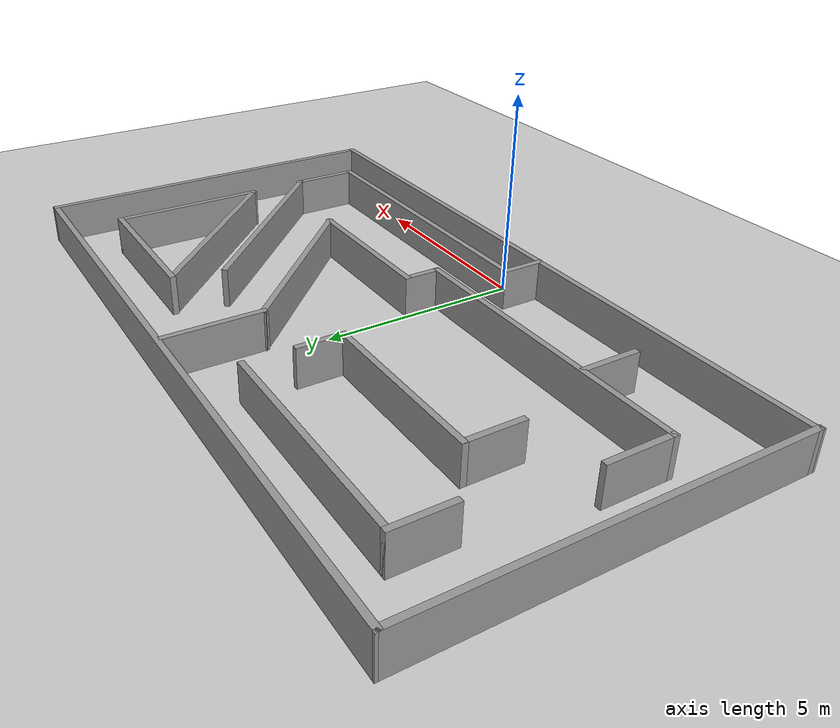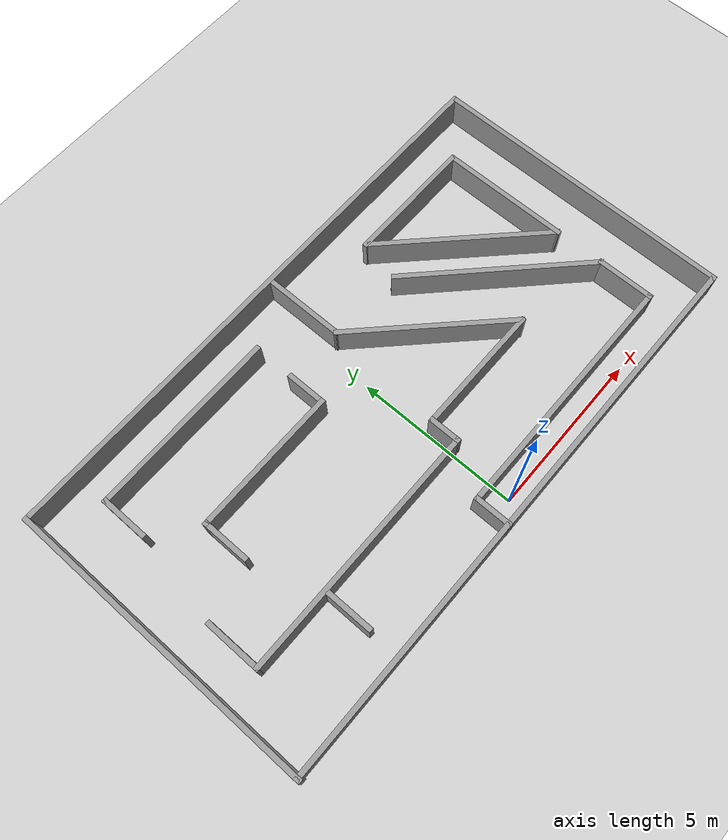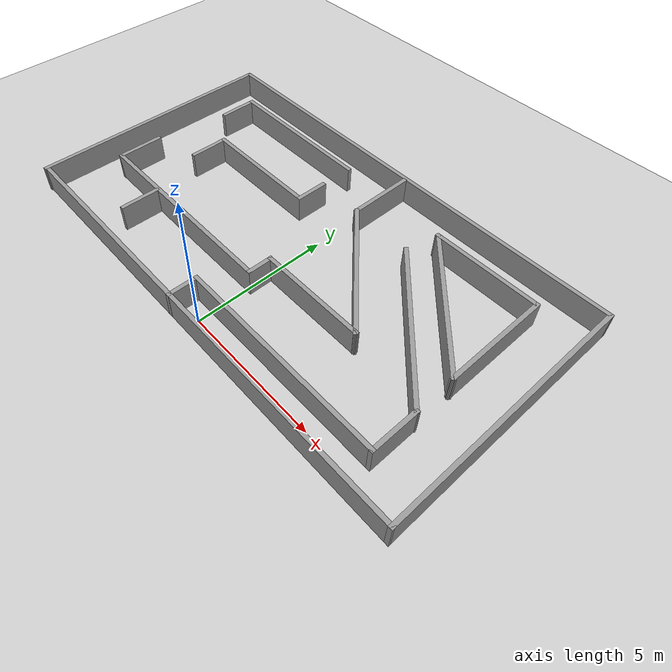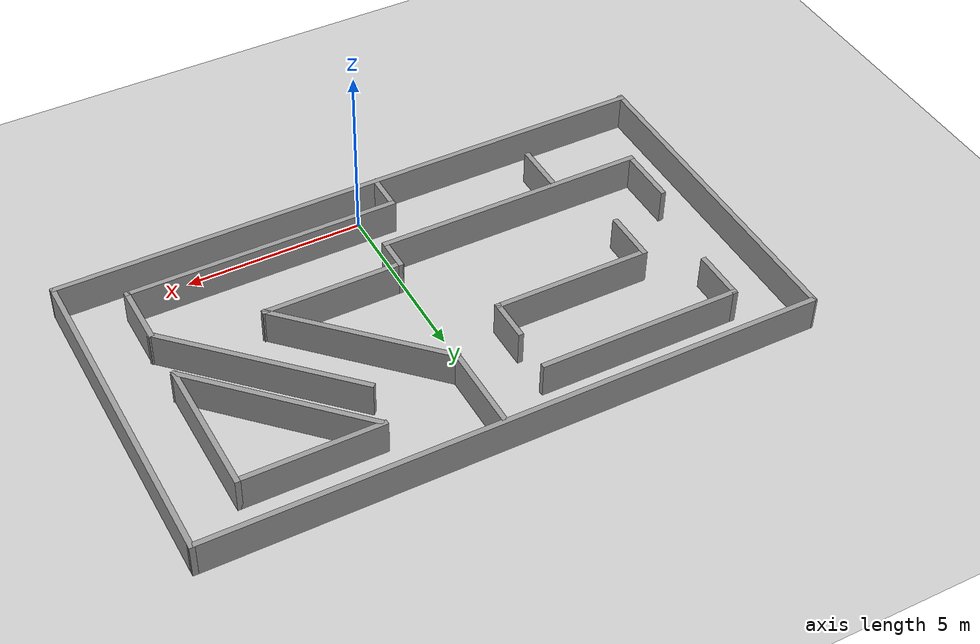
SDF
<sdf version="1.6">
 <world name="default">
  <light name="sun" type="directional">
   <pose>0 0 10 0 -0 0</pose>
   <diffuse>0.8 0.8 0.8 1</diffuse>
   <specular>0.2 0.2 0.2 1</specular>
   <attenuation>
    <range>1000</range>
    <constant>0.9</constant>
    <linear>0.01</linear>
    <quadratic>0.001</quadratic>
   </attenuation>
   <direction>-0.5 0.1 -0.9</direction>
  </light>
  <model name="ground_plane">
   <static>1</static>
   <link name="link">
    <collision name="collision">
     <geometry><plane><normal>0 0 1</normal><size>100 100</size></plane></geometry>
     <surface><friction><ode><mu>100</mu><mu2>50</mu2></ode></friction></surface>
    </collision>
    <visual name="visual">
     <cast_shadows>0</cast_shadows>
     <geometry><plane><normal>0 0 1</normal><size>100 100</size></plane></geometry>
     <material>
      <script><uri>file://media/materials/scripts/gazebo.material</uri><name>Gazebo/Grey</name></script>
     </material>
    </visual>
   </link>
  </model>
  <gravity>0 0 -9.8</gravity>
  <magnetic_field>6e-06 2.3e-05 -4.2e-05</magnetic_field>
  <atmosphere type="adiabatic"/>
  <physics name="default_physics" default="0" type="ode">
   <max_step_size>0.001</max_step_size>
   <real_time_factor>1</real_time_factor>
   <real_time_update_rate>1000</real_time_update_rate>
  </physics>
  <scene><ambient>0.4 0.4 0.4 1</ambient><background>0.7 0.7 0.7 1</background><shadows>1</shadows></scene>
  <audio><device>default</device></audio>
  <spherical_coordinates>
   <surface_model>EARTH_WGS84</surface_model>
   <latitude_deg>0</latitude_deg>
   <longitude_deg>0</longitude_deg>
   <elevation>0</elevation>
   <heading_deg>0</heading_deg>
  </spherical_coordinates>
  <model name="Untitled">
   <pose>-0.064 4.20511 0 0 -0 0</pose>
   <link name="Wall_0">
    <collision name="Wall_0_Collision">
     <geometry><box><size>17.25 0.15 1</size></box></geometry>
     <pose>0 0 0.5 0 -0 0</pose>
    </collision>
    <visual name="Wall_0_Visual">
     <pose>0 0 0.5 0 -0 0</pose>
     <geometry><box><size>17.25 0.15 1</size></box></geometry>
     <material>
      <script><uri>file://media/materials/scripts/gazebo.material</uri><name>Gazebo/Grey</name></script>
      <ambient>1 1 1 1</ambient>
     </material>
     <meta><layer>0</layer></meta>
    </visual>
    <pose>-0.01 -4.63711 0 0 -0 0</pose>
   </link>
   <link name="Wall_14">
    <collision name="Wall_14_Collision">
     <geometry><box><size>1.80062 0.15 1</size></box></geometry>
     <pose>0 0 0.5 0 -0 0</pose>
    </collision>
    <visual name="Wall_14_Visual">
     <pose>0 0 0.5 0 -0 0</pose>
     <geometry><box><size>1.80062 0.15 1</size></box></geometry>
     <material>
      <script><uri>file://media/materials/scripts/gazebo.material</uri><name>Gazebo/Grey</name></script>
      <ambient>1 1 1 1</ambient>
     </material>
     <meta><layer>0</layer></meta>
    </visual>
    <pose>6.909 -2.79911 0 0 -0 1.5708</pose>
   </link>
   <link name="Wall_19">
    <collision name="Wall_19_Collision">
     <geometry><box><size>4 0.15 1</size></box></geometry>
     <pose>0 0 0.5 0 -0 0</pose>
    </collision>
    <visual name="Wall_19_Visual">
     <pose>0 0 0.5 0 -0 0</pose>
     <geometry><box><size>4 0.15 1</size></box></geometry>
     <material>
      <script><uri>file://media/materials/scripts/gazebo.material</uri><name>Gazebo/Grey</name></script>
      <ambient>1 1 1 1</ambient>
     </material>
     <meta><layer>0</layer></meta>
    </visual>
    <pose>4.965 3.38689 0 0 -0 0</pose>
   </link>
   <link name="Wall_2">
    <collision name="Wall_2_Collision">
     <geometry><box><size>9.46245 0.15 1</size></box></geometry>
     <pose>0 0 0.5 0 -0 0</pose>
    </collision>
    <visual name="Wall_2_Visual">
     <pose>0 0 0.5 0 -0 0</pose>
     <geometry><box><size>9.46245 0.15 1</size></box></geometry>
     <material>
      <script><uri>file://media/materials/scripts/gazebo.material</uri><name>Gazebo/Grey</name></script>
      <ambient>1 1 1 1</ambient>
     </material>
     <meta><layer>0</layer></meta>
    </visual>
    <pose>8.55 0.018886 0 0 -0 1.56865</pose>
   </link>
   <link name="Wall_21">
    <collision name="Wall_21_Collision">
     <geometry><box><size>4 0.15 1</size></box></geometry>
     <pose>0 0 0.5 0 -0 0</pose>
    </collision>
    <visual name="Wall_21_Visual">
     <pose>0 0 0.5 0 -0 0</pose>
     <geometry><box><size>4 0.15 1</size></box></geometry>
     <material>
      <script><uri>file://media/materials/scripts/gazebo.material</uri><name>Gazebo/Grey</name></script>
      <ambient>1 1 1 1</ambient>
     </material>
     <meta><layer>0</layer></meta>
    </visual>
    <pose>6.89 1.46189 0 0 -0 -1.5708</pose>
   </link>
   <link name="Wall_22">
    <collision name="Wall_22_Collision">
     <geometry><box><size>5.5 0.15 1</size></box></geometry>
     <pose>0 0 0.5 0 -0 0</pose>
    </collision>
    <visual name="Wall_22_Visual">
     <pose>0 0 0.5 0 -0 0</pose>
     <geometry><box><size>5.5 0.15 1</size></box></geometry>
     <material>
      <script><uri>file://media/materials/scripts/gazebo.material</uri><name>Gazebo/Grey</name></script>
      <ambient>1 1 1 1</ambient>
     </material>
     <meta><layer>0</layer></meta>
    </visual>
    <pose>4.9985 1.42889 0 0 -0 2.35606</pose>
   </link>
   <link name="Wall_24">
    <collision name="Wall_24_Collision">
     <geometry><box><size>5.97869 0.15 1</size></box></geometry>
     <pose>0 0 0.5 0 -0 0</pose>
    </collision>
    <visual name="Wall_24_Visual">
     <pose>0 0 0.5 0 -0 0</pose>
     <geometry><box><size>5.97869 0.15 1</size></box></geometry>
     <material>
      <script><uri>file://media/materials/scripts/gazebo.material</uri><name>Gazebo/Grey</name></script>
      <ambient>1 1 1 1</ambient>
     </material>
     <meta><layer>0</layer></meta>
    </visual>
    <pose>4.8405 0.078886 0 0 -0 2.35995</pose>
   </link>
   <link name="Wall_37">
    <collision name="Wall_37_Collision">
     <geometry><box><size>7.73 0.15 1</size></box></geometry>
     <pose>0 0 0.5 0 -0 0</pose>
    </collision>
    <visual name="Wall_37_Visual">
     <pose>0 0 0.5 0 -0 0</pose>
     <geometry><box><size>7.73 0.15 1</size></box></geometry>
     <material>
      <script><uri>file://media/materials/scripts/gazebo.material</uri><name>Gazebo/Grey</name></script>
      <ambient>1 1 1 1</ambient>
     </material>
     <meta><layer>0</layer></meta>
    </visual>
    <pose>-3.59 -2.24611 0 0 -0 0</pose>
   </link>
   <link name="Wall_38">
    <collision name="Wall_38_Collision">
     <geometry><box><size>1 0.15 1</size></box></geometry>
     <pose>0 0 0.5 0 -0 0</pose>
    </collision>
    <visual name="Wall_38_Visual">
     <pose>0 0 0.5 0 -0 0</pose>
     <geometry><box><size>1 0.15 1</size></box></geometry>
     <material>
      <script><uri>file://media/materials/scripts/gazebo.material</uri><name>Gazebo/Grey</name></script>
      <ambient>1 1 1 1</ambient>
     </material>
     <meta><layer>0</layer></meta>
    </visual>
    <pose>0.2 -1.82111 0 0 -0 1.5708</pose>
   </link>
   <link name="Wall_39">
    <collision name="Wall_39_Collision">
     <geometry><box><size>4 0.15 1</size></box></geometry>
     <pose>0 0 0.5 0 -0 0</pose>
    </collision>
    <visual name="Wall_39_Visual">
     <pose>0 0 0.5 0 -0 0</pose>
     <geometry><box><size>4 0.15 1</size></box></geometry>
     <material>
      <script><uri>file://media/materials/scripts/gazebo.material</uri><name>Gazebo/Grey</name></script>
      <ambient>1 1 1 1</ambient>
     </material>
     <meta><layer>0</layer></meta>
    </visual>
    <pose>2.125 -1.39611 0 0 -0 0</pose>
   </link>
   <link name="Wall_4">
    <collision name="Wall_4_Collision">
     <geometry><box><size>17.25 0.15 1</size></box></geometry>
     <pose>0 0 0.5 0 -0 0</pose>
    </collision>
    <visual name="Wall_4_Visual">
     <pose>0 0 0.5 0 -0 0</pose>
     <geometry><box><size>17.25 0.15 1</size></box></geometry>
     <material>
      <script><uri>file://media/materials/scripts/gazebo.material</uri><name>Gazebo/Grey</name></script>
      <ambient>1 1 1 1</ambient>
     </material>
     <meta><layer>0</layer></meta>
    </visual>
    <pose>0.01 4.67489 0 0 -0 3.14159</pose>
   </link>
   <link name="Wall_40">
    <collision name="Wall_40_Collision">
     <geometry><box><size>5.25 0.15 1</size></box></geometry>
     <pose>0 0 0.5 0 -0 0</pose>
    </collision>
    <visual name="Wall_40_Visual">
     <pose>0 0 0.5 0 -0 0</pose>
     <geometry><box><size>5.25 0.15 1</size></box></geometry>
     <material>
      <script><uri>file://media/materials/scripts/gazebo.material</uri><name>Gazebo/Grey</name></script>
      <ambient>1 1 1 1</ambient>
     </material>
     <meta><layer>0</layer></meta>
    </visual>
    <pose>2.247 0.406886 0 0 -0 2.35619</pose>
   </link>
   <link name="Wall_41">
    <collision name="Wall_41_Collision">
     <geometry><box><size>2.5 0.15 1</size></box></geometry>
     <pose>0 0 0.5 0 -0 0</pose>
    </collision>
    <visual name="Wall_41_Visual">
     <pose>0 0 0.5 0 -0 0</pose>
     <geometry><box><size>2.5 0.15 1</size></box></geometry>
     <material>
      <script><uri>file://media/materials/scripts/gazebo.material</uri><name>Gazebo/Grey</name></script>
      <ambient>1 1 1 1</ambient>
     </material>
     <meta><layer>0</layer></meta>
    </visual>
    <pose>0.444 3.38489 0 0 -0 1.5708</pose>
   </link>
   <link name="Wall_43">
    <collision name="Wall_43_Collision">
     <geometry><box><size>1.75 0.15 1</size></box></geometry>
     <pose>0 0 0.5 0 -0 0</pose>
    </collision>
    <visual name="Wall_43_Visual">
     <pose>0 0 0.5 0 -0 0</pose>
     <geometry><box><size>1.75 0.15 1</size></box></geometry>
     <material>
      <script><uri>file://media/materials/scripts/gazebo.material</uri><name>Gazebo/Grey</name></script>
      <ambient>1 1 1 1</ambient>
     </material>
     <meta><layer>0</layer></meta>
    </visual>
    <pose>-7.38 -1.44611 0 0 -0 1.5708</pose>
   </link>
   <link name="Wall_45">
    <collision name="Wall_45_Collision">
     <geometry><box><size>1.5 0.15 1</size></box></geometry>
     <pose>0 0 0.5 0 -0 0</pose>
    </collision>
    <visual name="Wall_45_Visual">
     <pose>0 0 0.5 0 -0 0</pose>
     <geometry><box><size>1.5 0.15 1</size></box></geometry>
     <material>
      <script><uri>file://media/materials/scripts/gazebo.material</uri><name>Gazebo/Grey</name></script>
      <ambient>1 1 1 1</ambient>
     </material>
     <meta><layer>0</layer></meta>
    </visual>
    <pose>-4.935 -2.99511 0 0 -0 -1.5708</pose>
   </link>
   <link name="Wall_5">
    <collision name="Wall_5_Collision">
     <geometry><box><size>9.5 0.15 1</size></box></geometry>
     <pose>0 0 0.5 0 -0 0</pose>
    </collision>
    <visual name="Wall_5_Visual">
     <pose>0 0 0.5 0 -0 0</pose>
     <geometry><box><size>9.5 0.15 1</size></box></geometry>
     <material>
      <script><uri>file://media/materials/scripts/gazebo.material</uri><name>Gazebo/Grey</name></script>
      <ambient>1 1 1 1</ambient>
     </material>
     <meta><layer>0</layer></meta>
    </visual>
    <pose>-8.55 -0.000114 0 0 -0 -1.57293</pose>
   </link>
   <link name="Wall_62">
    <collision name="Wall_62_Collision">
     <geometry><box><size>1.5 0.15 1</size></box></geometry>
     <pose>0 0 0.5 0 -0 0</pose>
    </collision>
    <visual name="Wall_62_Visual">
     <pose>0 0 0.5 0 -0 0</pose>
     <geometry><box><size>1.5 0.15 1</size></box></geometry>
     <material>
      <script><uri>file://media/materials/scripts/gazebo.material</uri><name>Gazebo/Grey</name></script>
      <ambient>1 1 1 1</ambient>
     </material>
     <meta><layer>0</layer></meta>
    </visual>
    <pose>-6.905 2.83189 0 0 -0 1.5708</pose>
   </link>
   <link name="Wall_63">
    <collision name="Wall_63_Collision">
     <geometry><box><size>5.75 0.15 1</size></box></geometry>
     <pose>0 0 0.5 0 -0 0</pose>
    </collision>
    <visual name="Wall_63_Visual">
     <pose>0 0 0.5 0 -0 0</pose>
     <geometry><box><size>5.75 0.15 1</size></box></geometry>
     <material>
      <script><uri>file://media/materials/scripts/gazebo.material</uri><name>Gazebo/Grey</name></script>
      <ambient>1 1 1 1</ambient>
     </material>
     <meta><layer>0</layer></meta>
    </visual>
    <pose>-4.105 3.50689 0 0 -0 0</pose>
   </link>
   <link name="Wall_66">
    <collision name="Wall_66_Collision">
     <geometry><box><size>4.5 0.15 1</size></box></geometry>
     <pose>0 0 0.5 0 -0 0</pose>
    </collision>
    <visual name="Wall_66_Visual">
     <pose>0 0 0.5 0 -0 0</pose>
     <geometry><box><size>4.5 0.15 1</size></box></geometry>
     <material>
      <script><uri>file://media/materials/scripts/gazebo.material</uri><name>Gazebo/Grey</name></script>
      <ambient>1 1 1 1</ambient>
     </material>
     <meta><layer>0</layer></meta>
    </visual>
    <pose>-3.48 1.15689 0 0 -0 3.14159</pose>
   </link>
   <link name="Wall_67">
    <collision name="Wall_67_Collision">
     <geometry><box><size>1.5 0.15 1</size></box></geometry>
     <pose>0 0 0.5 0 -0 0</pose>
    </collision>
    <visual name="Wall_67_Visual">
     <pose>0 0 0.5 0 -0 0</pose>
     <geometry><box><size>1.5 0.15 1</size></box></geometry>
     <material>
      <script><uri>file://media/materials/scripts/gazebo.material</uri><name>Gazebo/Grey</name></script>
      <ambient>1 1 1 1</ambient>
     </material>
     <meta><layer>0</layer></meta>
    </visual>
    <pose>-5.655 0.481886 0 0 -0 -1.5708</pose>
   </link>
   <link name="Wall_69">
    <collision name="Wall_69_Collision">
     <geometry><box><size>1.25 0.15 1</size></box></geometry>
     <pose>0 0 0.5 0 -0 0</pose>
    </collision>
    <visual name="Wall_69_Visual">
     <pose>0 0 0.5 0 -0 0</pose>
     <geometry><box><size>1.25 0.15 1</size></box></geometry>
     <material>
      <script><uri>file://media/materials/scripts/gazebo.material</uri><name>Gazebo/Grey</name></script>
      <ambient>1 1 1 1</ambient>
     </material>
     <meta><layer>0</layer></meta>
    </visual>
    <pose>-1.305 1.70689 0 0 -0 1.5708</pose>
   </link>
   <link name="Wall_7">
    <collision name="Wall_7_Collision">
     <geometry><box><size>1.16778 0.15 1</size></box></geometry>
     <pose>0 0 0.5 0 -0 0</pose>
    </collision>
    <visual name="Wall_7_Visual">
     <pose>0 0 0.5 0 -0 0</pose>
     <geometry><box><size>1.16778 0.15 1</size></box></geometry>
     <material>
      <script><uri>file://media/materials/scripts/gazebo.material</uri><name>Gazebo/Grey</name></script>
      <ambient>1 1 1 1</ambient>
     </material>
     <meta><layer>0</layer></meta>
    </visual>
    <pose>-0.691 -4.13311 0 0 -0 1.5708</pose>
   </link>
   <link name="Wall_9">
    <collision name="Wall_9_Collision">
     <geometry><box><size>7.75 0.15 1</size></box></geometry>
     <pose>0 0 0.5 0 -0 0</pose>
    </collision>
    <visual name="Wall_9_Visual">
     <pose>0 0 0.5 0 -0 0</pose>
     <geometry><box><size>7.75 0.15 1</size></box></geometry>
     <material>
      <script><uri>file://media/materials/scripts/gazebo.material</uri><name>Gazebo/Grey</name></script>
      <ambient>1 1 1 1</ambient>
     </material>
     <meta><layer>0</layer></meta>
    </visual>
    <pose>3.109 -3.62411 0 0 -0 0</pose>
   </link>
   <static>1</static>
  </model>
 </world>
</sdf>
